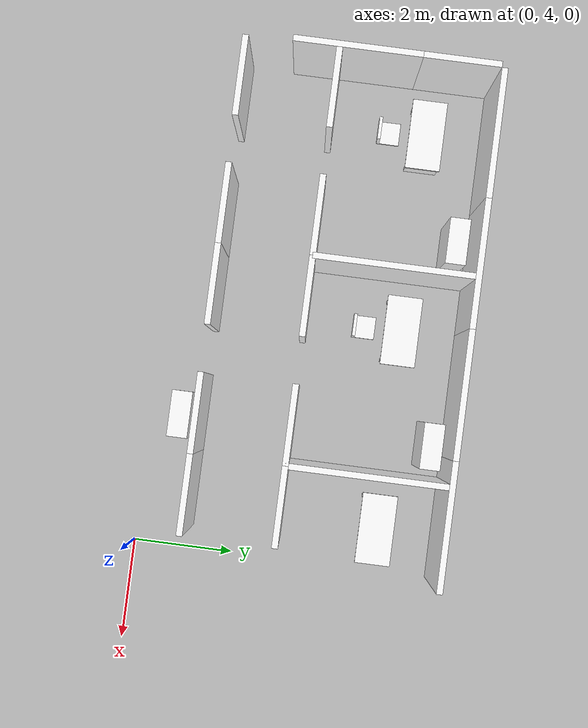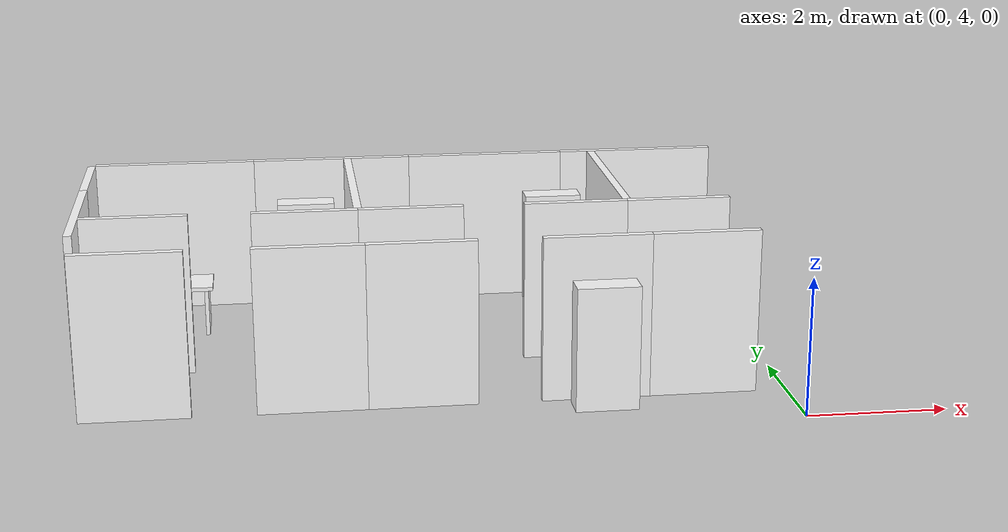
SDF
<sdf version="1.9">
 <world name="office">
  <model name="ground_plane">
   <static>true</static>
   <link name="link">
    <collision name="collision">
     <geometry><plane><normal>0 0 1</normal><size>100 100</size></plane></geometry>
     <surface><friction><ode><mu>1.0</mu><mu2>1.0</mu2></ode></friction></surface>
    </collision>
   </link>
  </model>
  <model name="w_n1">
   <static>true</static>
   <pose>-8.7500 10.0600 1.2000 0 0 0</pose>
   <link name="link">
    <collision name="c"><geometry><box><size>2.5000 0.1200 2.4000</size></box></geometry></collision>
    <visual name="v">
     <geometry><box><size>2.5000 0.1200 2.4000</size></box></geometry>
     <material>
      <diffuse>1 1 1 1</diffuse>
      <pbr>
       <metal>
        <albedo_map>model://room_materials/materials/textures/office_001.png</albedo_map>
        <roughness>0.92</roughness>
       </metal>
      </pbr>
     </material>
    </visual>
   </link>
  </model>
  <model name="w_n3">
   <static>true</static>
   <pose>-6.2500 10.0600 1.2000 0 0 0</pose>
   <link name="link">
    <collision name="c"><geometry><box><size>2.5000 0.1200 2.4000</size></box></geometry></collision>
    <visual name="v">
     <geometry><box><size>2.5000 0.1200 2.4000</size></box></geometry>
     <material>
      <diffuse>1 1 1 1</diffuse>
      <pbr>
       <metal>
        <albedo_map>model://room_materials/materials/textures/office_003.png</albedo_map>
        <roughness>0.92</roughness>
       </metal>
      </pbr>
     </material>
    </visual>
   </link>
  </model>
  <model name="w_n5">
   <static>true</static>
   <pose>-3.7500 10.0600 1.2000 0 0 0</pose>
   <link name="link">
    <collision name="c"><geometry><box><size>2.5000 0.1200 2.4000</size></box></geometry></collision>
    <visual name="v">
     <geometry><box><size>2.5000 0.1200 2.4000</size></box></geometry>
     <material>
      <diffuse>1 1 1 1</diffuse>
      <pbr>
       <metal>
        <albedo_map>model://room_materials/materials/textures/office_005.png</albedo_map>
        <roughness>0.92</roughness>
       </metal>
      </pbr>
     </material>
    </visual>
   </link>
  </model>
  <model name="w_n7">
   <static>true</static>
   <pose>-1.2500 10.0600 1.2000 0 0 0</pose>
   <link name="link">
    <collision name="c"><geometry><box><size>2.5000 0.1200 2.4000</size></box></geometry></collision>
    <visual name="v">
     <geometry><box><size>2.5000 0.1200 2.4000</size></box></geometry>
     <material>
      <diffuse>1 1 1 1</diffuse>
      <pbr>
       <metal>
        <albedo_map>model://room_materials/materials/textures/office_007.png</albedo_map>
        <roughness>0.92</roughness>
       </metal>
      </pbr>
     </material>
    </visual>
   </link>
  </model>
  <model name="w_w24">
   <static>true</static>
   <pose>-10.0600 7.2500 1.2000 0 0 0</pose>
   <link name="link">
    <collision name="c"><geometry><box><size>0.1200 2.5000 2.4000</size></box></geometry></collision>
    <visual name="v">
     <geometry><box><size>0.1200 2.5000 2.4000</size></box></geometry>
     <material>
      <diffuse>1 1 1 1</diffuse>
      <pbr>
       <metal>
        <albedo_map>model://room_materials/materials/textures/office_024.png</albedo_map>
        <roughness>0.92</roughness>
       </metal>
      </pbr>
     </material>
    </visual>
   </link>
  </model>
  <model name="w_w26">
   <static>true</static>
   <pose>-10.0600 9.2500 1.2000 0 0 0</pose>
   <link name="link">
    <collision name="c"><geometry><box><size>0.1200 1.5000 2.4000</size></box></geometry></collision>
    <visual name="v">
     <geometry><box><size>0.1200 1.5000 2.4000</size></box></geometry>
     <material>
      <diffuse>1 1 1 1</diffuse>
      <pbr>
       <metal>
        <albedo_map>model://room_materials/materials/textures/office_026.png</albedo_map>
        <roughness>0.92</roughness>
       </metal>
      </pbr>
     </material>
    </visual>
   </link>
  </model>
  <model name="cB_s_0a">
   <static>true</static>
   <pose>-9.2250 5.1000 1.2000 0 0 0</pose>
   <link name="link">
    <collision name="c"><geometry><box><size>1.5500 0.1200 2.4000</size></box></geometry></collision>
    <visual name="v">
     <geometry><box><size>1.5500 0.1200 2.4000</size></box></geometry>
     <material>
      <diffuse>1 1 1 1</diffuse>
      <pbr>
       <metal>
        <albedo_map>model://room_materials/materials/textures/office_038.png</albedo_map>
        <roughness>0.92</roughness>
       </metal>
      </pbr>
     </material>
    </visual>
   </link>
  </model>
  <model name="cB_s_0b">
   <static>true</static>
   <pose>-6.7750 5.1000 1.2000 0 0 0</pose>
   <link name="link">
    <collision name="c"><geometry><box><size>1.5500 0.1200 2.4000</size></box></geometry></collision>
    <visual name="v">
     <geometry><box><size>1.5500 0.1200 2.4000</size></box></geometry>
     <material>
      <diffuse>1 1 1 1</diffuse>
      <pbr>
       <metal>
        <albedo_map>model://room_materials/materials/textures/office_039.png</albedo_map>
        <roughness>0.92</roughness>
       </metal>
      </pbr>
     </material>
    </visual>
   </link>
  </model>
  <model name="cB_s_1a">
   <static>true</static>
   <pose>-5.2250 5.1000 1.2000 0 0 0</pose>
   <link name="link">
    <collision name="c"><geometry><box><size>1.5500 0.1200 2.4000</size></box></geometry></collision>
    <visual name="v">
     <geometry><box><size>1.5500 0.1200 2.4000</size></box></geometry>
     <material>
      <diffuse>1 1 1 1</diffuse>
      <pbr>
       <metal>
        <albedo_map>model://room_materials/materials/textures/office_040.png</albedo_map>
        <roughness>0.92</roughness>
       </metal>
      </pbr>
     </material>
    </visual>
   </link>
  </model>
  <model name="cB_s_1b">
   <static>true</static>
   <pose>-2.7750 5.1000 1.2000 0 0 0</pose>
   <link name="link">
    <collision name="c"><geometry><box><size>1.5500 0.1200 2.4000</size></box></geometry></collision>
    <visual name="v">
     <geometry><box><size>1.5500 0.1200 2.4000</size></box></geometry>
     <material>
      <diffuse>1 1 1 1</diffuse>
      <pbr>
       <metal>
        <albedo_map>model://room_materials/materials/textures/office_041.png</albedo_map>
        <roughness>0.92</roughness>
       </metal>
      </pbr>
     </material>
    </visual>
   </link>
  </model>
  <model name="cB_s_2a">
   <static>true</static>
   <pose>-1.2250 5.1000 1.2000 0 0 0</pose>
   <link name="link">
    <collision name="c"><geometry><box><size>1.5500 0.1200 2.4000</size></box></geometry></collision>
    <visual name="v">
     <geometry><box><size>1.5500 0.1200 2.4000</size></box></geometry>
     <material>
      <diffuse>1 1 1 1</diffuse>
      <pbr>
       <metal>
        <albedo_map>model://room_materials/materials/textures/office_042.png</albedo_map>
        <roughness>0.92</roughness>
       </metal>
      </pbr>
     </material>
    </visual>
   </link>
  </model>
  <model name="cB_n_0a">
   <static>true</static>
   <pose>-9.2250 6.9000 1.2000 0 0 0</pose>
   <link name="link">
    <collision name="c"><geometry><box><size>1.5500 0.1200 2.4000</size></box></geometry></collision>
    <visual name="v">
     <geometry><box><size>1.5500 0.1200 2.4000</size></box></geometry>
     <material>
      <diffuse>1 1 1 1</diffuse>
      <pbr>
       <metal>
        <albedo_map>model://room_materials/materials/textures/office_048.png</albedo_map>
        <roughness>0.92</roughness>
       </metal>
      </pbr>
     </material>
    </visual>
   </link>
  </model>
  <model name="cB_n_0b">
   <static>true</static>
   <pose>-6.7750 6.9000 1.2000 0 0 0</pose>
   <link name="link">
    <collision name="c"><geometry><box><size>1.5500 0.1200 2.4000</size></box></geometry></collision>
    <visual name="v">
     <geometry><box><size>1.5500 0.1200 2.4000</size></box></geometry>
     <material>
      <diffuse>1 1 1 1</diffuse>
      <pbr>
       <metal>
        <albedo_map>model://room_materials/materials/textures/office_049.png</albedo_map>
        <roughness>0.92</roughness>
       </metal>
      </pbr>
     </material>
    </visual>
   </link>
  </model>
  <model name="cB_n_1a">
   <static>true</static>
   <pose>-5.2250 6.9000 1.2000 0 0 0</pose>
   <link name="link">
    <collision name="c"><geometry><box><size>1.5500 0.1200 2.4000</size></box></geometry></collision>
    <visual name="v">
     <geometry><box><size>1.5500 0.1200 2.4000</size></box></geometry>
     <material>
      <diffuse>1 1 1 1</diffuse>
      <pbr>
       <metal>
        <albedo_map>model://room_materials/materials/textures/office_050.png</albedo_map>
        <roughness>0.92</roughness>
       </metal>
      </pbr>
     </material>
    </visual>
   </link>
  </model>
  <model name="cB_n_1b">
   <static>true</static>
   <pose>-2.7750 6.9000 1.2000 0 0 0</pose>
   <link name="link">
    <collision name="c"><geometry><box><size>1.5500 0.1200 2.4000</size></box></geometry></collision>
    <visual name="v">
     <geometry><box><size>1.5500 0.1200 2.4000</size></box></geometry>
     <material>
      <diffuse>1 1 1 1</diffuse>
      <pbr>
       <metal>
        <albedo_map>model://room_materials/materials/textures/office_051.png</albedo_map>
        <roughness>0.92</roughness>
       </metal>
      </pbr>
     </material>
    </visual>
   </link>
  </model>
  <model name="cB_n_2a">
   <static>true</static>
   <pose>-1.2250 6.9000 1.2000 0 0 0</pose>
   <link name="link">
    <collision name="c"><geometry><box><size>1.5500 0.1200 2.4000</size></box></geometry></collision>
    <visual name="v">
     <geometry><box><size>1.5500 0.1200 2.4000</size></box></geometry>
     <material>
      <diffuse>1 1 1 1</diffuse>
      <pbr>
       <metal>
        <albedo_map>model://room_materials/materials/textures/office_052.png</albedo_map>
        <roughness>0.92</roughness>
       </metal>
      </pbr>
     </material>
    </visual>
   </link>
  </model>
  <model name="p2_0">
   <static>true</static>
   <pose>-6.0000 8.4500 1.2000 0 0 0</pose>
   <link name="link">
    <collision name="c"><geometry><box><size>0.1200 3.1000 2.4000</size></box></geometry></collision>
    <visual name="v">
     <geometry><box><size>0.1200 3.1000 2.4000</size></box></geometry>
     <material>
      <diffuse>1 1 1 1</diffuse>
      <pbr>
       <metal>
        <albedo_map>model://room_materials/materials/textures/office_059.png</albedo_map>
        <roughness>0.92</roughness>
       </metal>
      </pbr>
     </material>
    </visual>
   </link>
  </model>
  <model name="p2_1">
   <static>true</static>
   <pose>-2.0000 8.4500 1.2000 0 0 0</pose>
   <link name="link">
    <collision name="c"><geometry><box><size>0.1200 3.1000 2.4000</size></box></geometry></collision>
    <visual name="v">
     <geometry><box><size>0.1200 3.1000 2.4000</size></box></geometry>
     <material>
      <diffuse>1 1 1 1</diffuse>
      <pbr>
       <metal>
        <albedo_map>model://room_materials/materials/textures/office_061.png</albedo_map>
        <roughness>0.92</roughness>
       </metal>
      </pbr>
     </material>
    </visual>
   </link>
  </model>
  <model name="shelf_1">
   <static>true</static>
   <pose>-2.700 4.750 0.900 0 0 0</pose>
   <link name="link">
    <collision name="c"><geometry><box><size>0.900 0.400 1.800</size></box></geometry></collision>
    <visual name="v">
     <geometry><box><size>0.900 0.400 1.800</size></box></geometry>
     <material>
      <diffuse>1 1 1 1</diffuse>
      <pbr>
       <metal>
        <albedo_map>model://room_materials/materials/textures/poster2.png</albedo_map>
        <roughness>0.92</roughness>
       </metal>
      </pbr>
     </material>
    </visual>
   </link>
  </model>
  <model name="desk_5">
   <static>true</static>
   <pose>-8.900 8.850 0.750 0 0 0</pose>
   <link name="link">
    <collision name="c"><geometry><box><size>1.400 0.700 0.060</size></box></geometry></collision>
    <visual name="v">
     <geometry><box><size>1.400 0.700 0.060</size></box></geometry>
     <material>
      <diffuse>1 1 1 1</diffuse>
      <pbr>
       <metal>
        <albedo_map>model://room_materials/materials/textures/poster6.png</albedo_map>
        <roughness>0.92</roughness>
       </metal>
      </pbr>
     </material>
    </visual>
   </link>
  </model>
  <model name="desk_5_l1">
   <static>true</static>
   <pose>-9.500 8.850 0.360 0 0 0</pose>
   <link name="link">
    <collision name="c"><geometry><box><size>0.060 0.660 0.720</size></box></geometry></collision>
    <visual name="v">
     <geometry><box><size>0.060 0.660 0.720</size></box></geometry>
     <material>
      <diffuse>1 1 1 1</diffuse>
      <pbr>
       <metal>
        <albedo_map>model://room_materials/materials/textures/crate.png</albedo_map>
        <roughness>0.92</roughness>
       </metal>
      </pbr>
     </material>
    </visual>
   </link>
  </model>
  <model name="desk_5_l2">
   <static>true</static>
   <pose>-8.300 8.850 0.360 0 0 0</pose>
   <link name="link">
    <collision name="c"><geometry><box><size>0.060 0.660 0.720</size></box></geometry></collision>
    <visual name="v">
     <geometry><box><size>0.060 0.660 0.720</size></box></geometry>
     <material>
      <diffuse>1 1 1 1</diffuse>
      <pbr>
       <metal>
        <albedo_map>model://room_materials/materials/textures/crate.png</albedo_map>
        <roughness>0.92</roughness>
       </metal>
      </pbr>
     </material>
    </visual>
   </link>
  </model>
  <model name="chair_5">
   <static>true</static>
   <pose>-8.900 8.100 0.455 0 0 0</pose>
   <link name="link">
    <collision name="c"><geometry><box><size>0.450 0.450 0.050</size></box></geometry></collision>
    <visual name="v">
     <geometry><box><size>0.450 0.450 0.050</size></box></geometry>
     <material>
      <diffuse>1 1 1 1</diffuse>
      <pbr>
       <metal>
        <albedo_map>model://room_materials/materials/textures/crate.png</albedo_map>
        <roughness>0.92</roughness>
       </metal>
      </pbr>
     </material>
    </visual>
   </link>
  </model>
  <model name="chair_5_b">
   <static>true</static>
   <pose>-8.900 7.900 0.680 0 0 0</pose>
   <link name="link">
    <collision name="c"><geometry><box><size>0.450 0.060 0.500</size></box></geometry></collision>
    <visual name="v">
     <geometry><box><size>0.450 0.060 0.500</size></box></geometry>
     <material>
      <diffuse>1 1 1 1</diffuse>
      <pbr>
       <metal>
        <albedo_map>model://room_materials/materials/textures/poster6.png</albedo_map>
        <roughness>0.92</roughness>
       </metal>
      </pbr>
     </material>
    </visual>
   </link>
  </model>
  <model name="shelf_5">
   <static>true</static>
   <pose>-6.700 9.650 0.900 0 0 0</pose>
   <link name="link">
    <collision name="c"><geometry><box><size>0.900 0.400 1.800</size></box></geometry></collision>
    <visual name="v">
     <geometry><box><size>0.900 0.400 1.800</size></box></geometry>
     <material>
      <diffuse>1 1 1 1</diffuse>
      <pbr>
       <metal>
        <albedo_map>model://room_materials/materials/textures/poster6.png</albedo_map>
        <roughness>0.92</roughness>
       </metal>
      </pbr>
     </material>
    </visual>
   </link>
  </model>
  <model name="desk_6">
   <static>true</static>
   <pose>-4.900 8.850 0.750 0 0 0</pose>
   <link name="link">
    <collision name="c"><geometry><box><size>1.400 0.700 0.060</size></box></geometry></collision>
    <visual name="v">
     <geometry><box><size>1.400 0.700 0.060</size></box></geometry>
     <material>
      <diffuse>1 1 1 1</diffuse>
      <pbr>
       <metal>
        <albedo_map>model://room_materials/materials/textures/poster7.png</albedo_map>
        <roughness>0.92</roughness>
       </metal>
      </pbr>
     </material>
    </visual>
   </link>
  </model>
  <model name="desk_6_l1">
   <static>true</static>
   <pose>-5.500 8.850 0.360 0 0 0</pose>
   <link name="link">
    <collision name="c"><geometry><box><size>0.060 0.660 0.720</size></box></geometry></collision>
    <visual name="v">
     <geometry><box><size>0.060 0.660 0.720</size></box></geometry>
     <material>
      <diffuse>1 1 1 1</diffuse>
      <pbr>
       <metal>
        <albedo_map>model://room_materials/materials/textures/crate.png</albedo_map>
        <roughness>0.92</roughness>
       </metal>
      </pbr>
     </material>
    </visual>
   </link>
  </model>
  <model name="desk_6_l2">
   <static>true</static>
   <pose>-4.300 8.850 0.360 0 0 0</pose>
   <link name="link">
    <collision name="c"><geometry><box><size>0.060 0.660 0.720</size></box></geometry></collision>
    <visual name="v">
     <geometry><box><size>0.060 0.660 0.720</size></box></geometry>
     <material>
      <diffuse>1 1 1 1</diffuse>
      <pbr>
       <metal>
        <albedo_map>model://room_materials/materials/textures/crate.png</albedo_map>
        <roughness>0.92</roughness>
       </metal>
      </pbr>
     </material>
    </visual>
   </link>
  </model>
  <model name="chair_6">
   <static>true</static>
   <pose>-4.900 8.100 0.455 0 0 0</pose>
   <link name="link">
    <collision name="c"><geometry><box><size>0.450 0.450 0.050</size></box></geometry></collision>
    <visual name="v">
     <geometry><box><size>0.450 0.450 0.050</size></box></geometry>
     <material>
      <diffuse>1 1 1 1</diffuse>
      <pbr>
       <metal>
        <albedo_map>model://room_materials/materials/textures/crate.png</albedo_map>
        <roughness>0.92</roughness>
       </metal>
      </pbr>
     </material>
    </visual>
   </link>
  </model>
  <model name="chair_6_b">
   <static>true</static>
   <pose>-4.900 7.900 0.680 0 0 0</pose>
   <link name="link">
    <collision name="c"><geometry><box><size>0.450 0.060 0.500</size></box></geometry></collision>
    <visual name="v">
     <geometry><box><size>0.450 0.060 0.500</size></box></geometry>
     <material>
      <diffuse>1 1 1 1</diffuse>
      <pbr>
       <metal>
        <albedo_map>model://room_materials/materials/textures/poster7.png</albedo_map>
        <roughness>0.92</roughness>
       </metal>
      </pbr>
     </material>
    </visual>
   </link>
  </model>
  <model name="shelf_6">
   <static>true</static>
   <pose>-2.700 9.650 0.900 0 0 0</pose>
   <link name="link">
    <collision name="c"><geometry><box><size>0.900 0.400 1.800</size></box></geometry></collision>
    <visual name="v">
     <geometry><box><size>0.900 0.400 1.800</size></box></geometry>
     <material>
      <diffuse>1 1 1 1</diffuse>
      <pbr>
       <metal>
        <albedo_map>model://room_materials/materials/textures/poster7.png</albedo_map>
        <roughness>0.92</roughness>
       </metal>
      </pbr>
     </material>
    </visual>
   </link>
  </model>
  <model name="desk_7">
   <static>true</static>
   <pose>-0.900 8.850 0.750 0 0 0</pose>
   <link name="link">
    <collision name="c"><geometry><box><size>1.400 0.700 0.060</size></box></geometry></collision>
    <visual name="v">
     <geometry><box><size>1.400 0.700 0.060</size></box></geometry>
     <material>
      <diffuse>1 1 1 1</diffuse>
      <pbr>
       <metal>
        <albedo_map>model://room_materials/materials/textures/poster8.png</albedo_map>
        <roughness>0.92</roughness>
       </metal>
      </pbr>
     </material>
    </visual>
   </link>
  </model>
  <model name="desk_7_l1">
   <static>true</static>
   <pose>-1.500 8.850 0.360 0 0 0</pose>
   <link name="link">
    <collision name="c"><geometry><box><size>0.060 0.660 0.720</size></box></geometry></collision>
    <visual name="v">
     <geometry><box><size>0.060 0.660 0.720</size></box></geometry>
     <material>
      <diffuse>1 1 1 1</diffuse>
      <pbr>
       <metal>
        <albedo_map>model://room_materials/materials/textures/crate.png</albedo_map>
        <roughness>0.92</roughness>
       </metal>
      </pbr>
     </material>
    </visual>
   </link>
  </model>
 </world>
</sdf>
